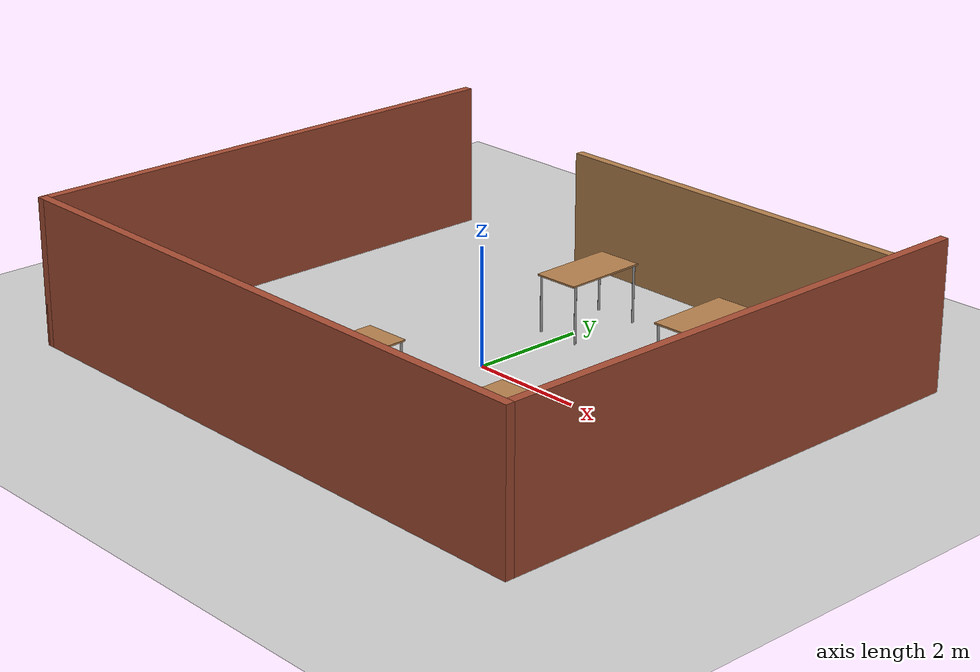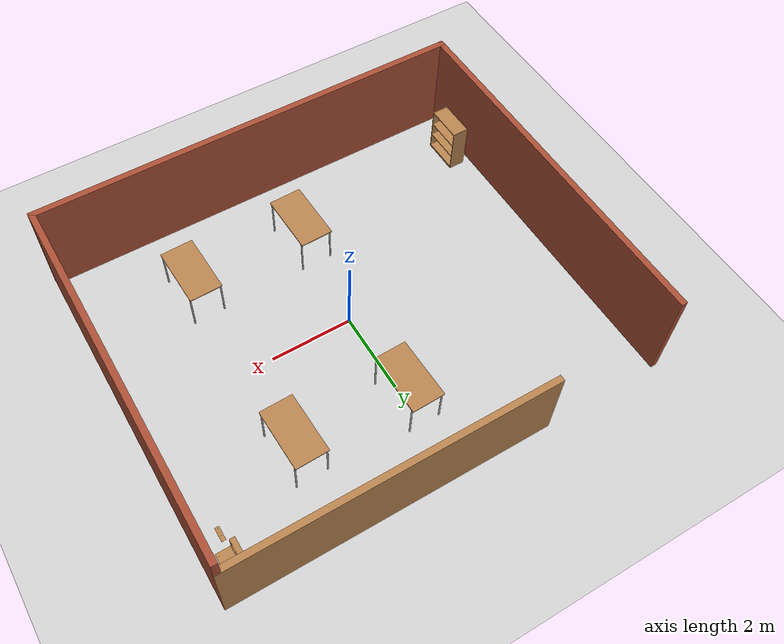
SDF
<sdf version="1.6">
 <world name="default">
  <light name="sun" type="directional">
   <pose>0 0 10 0 -0 0</pose>
   <diffuse>0.8 0.8 0.8 1</diffuse>
   <specular>0.2 0.2 0.2 1</specular>
   <attenuation>
    <range>1000</range>
    <constant>0.9</constant>
    <linear>0.01</linear>
    <quadratic>0.001</quadratic>
   </attenuation>
   <direction>-0.5 0.1 -0.9</direction>
  </light>
  <model name="ground_plane">
   <static>1</static>
   <link name="link">
    <collision name="collision">
     <geometry><plane><normal>0 0 1</normal><size>100 100</size></plane></geometry>
     <surface>
      <contact><collide_bitmask>65535</collide_bitmask></contact>
      <friction><ode><mu>100</mu><mu2>50</mu2></ode></friction>
     </surface>
    </collision>
    <visual name="visual">
     <cast_shadows>0</cast_shadows>
     <geometry><plane><normal>0 0 1</normal><size>100 100</size></plane></geometry>
     <material>
      <script><uri>file://media/materials/scripts/gazebo.material</uri><name>Gazebo/Grey</name></script>
     </material>
    </visual>
   </link>
  </model>
  <gravity>0 0 -9.8</gravity>
  <magnetic_field>6e-06 2.3e-05 -4.2e-05</magnetic_field>
  <atmosphere type="adiabatic"/>
  <physics name="default_physics" default="0" type="ode">
   <max_step_size>0.001</max_step_size>
   <real_time_factor>1</real_time_factor>
   <real_time_update_rate>1000</real_time_update_rate>
  </physics>
  <scene>
   <ambient>0.4 0.4 0.4 1</ambient>
   <sky><clouds><speed>12</speed></clouds></sky>
   <shadows>1</shadows>
  </scene>
  <audio><device>default</device></audio>
  <spherical_coordinates>
   <surface_model>EARTH_WGS84</surface_model>
   <latitude_deg>0</latitude_deg>
   <longitude_deg>0</longitude_deg>
   <elevation>0</elevation>
   <heading_deg>0</heading_deg>
  </spherical_coordinates>
  <model name="RRC_club">
   <pose>0.045782 -0.035983 0 0 -0 0</pose>
   <link name="Wall_14">
    <collision name="Wall_14_Collision">
     <geometry><box><size>10.75 0.15 2.5</size></box></geometry>
     <pose>0 0 1.25 0 -0 0</pose>
    </collision>
    <visual name="Wall_14_Visual">
     <pose>0 0 1.25 0 -0 0</pose>
     <geometry><box><size>10.75 0.15 2.5</size></box></geometry>
     <material>
      <script><uri>file://media/materials/scripts/gazebo.material</uri><name>Gazebo/Bricks</name></script>
      <ambient>1 1 1 1</ambient>
     </material>
     <meta><layer>0</layer></meta>
    </visual>
    <pose>-5e-06 -4.42518 0 0 -0 0</pose>
   </link>
   <link name="Wall_16">
    <collision name="Wall_16_Collision">
     <geometry><box><size>9 0.15 2.5</size></box></geometry>
     <pose>0 0 1.25 0 -0 0</pose>
    </collision>
    <visual name="Wall_16_Visual">
     <pose>0 0 1.25 0 -0 0</pose>
     <geometry><box><size>9 0.15 2.5</size></box></geometry>
     <material>
      <script><uri>file://media/materials/scripts/gazebo.material</uri><name>Gazebo/Bricks</name></script>
      <ambient>1 1 1 1</ambient>
     </material>
     <meta><layer>0</layer></meta>
    </visual>
    <pose>5.3 0 0 0 -0 1.57079</pose>
   </link>
   <link name="Wall_18">
    <collision name="Wall_18_Collision">
     <geometry><box><size>9 0.15 2.5</size></box></geometry>
     <pose>0 0 1.25 0 -0 0</pose>
    </collision>
    <visual name="Wall_18_Visual">
     <pose>0 0 1.25 0 -0 0</pose>
     <geometry><box><size>9 0.15 2.5</size></box></geometry>
     <material>
      <script><uri>file://media/materials/scripts/gazebo.material</uri><name>Gazebo/Bricks</name></script>
      <ambient>1 1 1 1</ambient>
     </material>
     <meta><layer>0</layer></meta>
    </visual>
    <pose>-5.3 -0.000181 0 0 -0 -1.5708</pose>
   </link>
   <link name="Wall_20">
    <collision name="Wall_20_Collision">
     <geometry><box><size>7.75 0.15 2</size></box></geometry>
     <pose>0 0 1 0 -0 0</pose>
    </collision>
    <visual name="Wall_20_Visual">
     <pose>0 0 1 0 -0 0</pose>
     <geometry><box><size>7.75 0.15 2</size></box></geometry>
     <material>
      <script><uri>file://media/materials/scripts/gazebo.material</uri><name>Gazebo/Wood</name></script>
      <ambient>1 1 1 1</ambient>
     </material>
     <meta><layer>0</layer></meta>
    </visual>
    <pose>1.50001 4.42518 0 0 -0 3.14159</pose>
   </link>
   <static>1</static>
  </model>
  <model name="table">
   <static>1</static>
   <link name="link">
    <collision name="surface">
     <pose>0 0 1 0 -0 0</pose>
     <geometry><box><size>1.5 0.8 0.03</size></box></geometry>
     <surface><friction><ode><mu>0.6</mu><mu2>0.6</mu2></ode></friction></surface>
    </collision>
    <visual name="visual1">
     <pose>0 0 1 0 -0 0</pose>
     <geometry><box><size>1.5 0.8 0.03</size></box></geometry>
     <material>
      <script><uri>file://media/materials/scripts/gazebo.material</uri><name>Gazebo/Wood</name></script>
     </material>
    </visual>
    <collision name="front_left_leg">
     <pose>0.68 0.38 0.5 0 -0 0</pose>
     <geometry><cylinder><radius>0.02</radius><length>1</length></cylinder></geometry>
    </collision>
    <visual name="front_left_leg">
     <pose>0.68 0.38 0.5 0 -0 0</pose>
     <geometry><cylinder><radius>0.02</radius><length>1</length></cylinder></geometry>
     <material>
      <script><uri>file://media/materials/scripts/gazebo.material</uri><name>Gazebo/Grey</name></script>
     </material>
    </visual>
    <collision name="front_right_leg">
     <pose>0.68 -0.38 0.5 0 -0 0</pose>
     <geometry><cylinder><radius>0.02</radius><length>1</length></cylinder></geometry>
    </collision>
    <visual name="front_right_leg">
     <pose>0.68 -0.38 0.5 0 -0 0</pose>
     <geometry><cylinder><radius>0.02</radius><length>1</length></cylinder></geometry>
     <material>
      <script><uri>file://media/materials/scripts/gazebo.material</uri><name>Gazebo/Grey</name></script>
     </material>
    </visual>
    <collision name="back_right_leg">
     <pose>-0.68 -0.38 0.5 0 -0 0</pose>
     <geometry><cylinder><radius>0.02</radius><length>1</length></cylinder></geometry>
    </collision>
    <visual name="back_right_leg">
     <pose>-0.68 -0.38 0.5 0 -0 0</pose>
     <geometry><cylinder><radius>0.02</radius><length>1</length></cylinder></geometry>
     <material>
      <script><uri>file://media/materials/scripts/gazebo.material</uri><name>Gazebo/Grey</name></script>
     </material>
    </visual>
    <collision name="back_left_leg">
     <pose>-0.68 0.38 0.5 0 -0 0</pose>
     <geometry><cylinder><radius>0.02</radius><length>1</length></cylinder></geometry>
    </collision>
    <visual name="back_left_leg">
     <pose>-0.68 0.38 0.5 0 -0 0</pose>
     <geometry><cylinder><radius>0.02</radius><length>1</length></cylinder></geometry>
     <material>
      <script><uri>file://media/materials/scripts/gazebo.material</uri><name>Gazebo/Grey</name></script>
     </material>
    </visual>
   </link>
   <pose>-0.155231 -2.51877 0 0 -0 1.59842</pose>
  </model>
  <model name="table_clone">
   <static>1</static>
   <link name="link">
    <collision name="surface">
     <pose>0 0 1 0 -0 0</pose>
     <geometry><box><size>1.5 0.8 0.03</size></box></geometry>
     <surface><friction><ode><mu>0.6</mu><mu2>0.6</mu2></ode></friction></surface>
    </collision>
    <visual name="visual1">
     <pose>0 0 1 0 -0 0</pose>
     <geometry><box><size>1.5 0.8 0.03</size></box></geometry>
     <material>
      <script><uri>file://media/materials/scripts/gazebo.material</uri><name>Gazebo/Wood</name></script>
     </material>
    </visual>
    <collision name="front_left_leg">
     <pose>0.68 0.38 0.5 0 -0 0</pose>
     <geometry><cylinder><radius>0.02</radius><length>1</length></cylinder></geometry>
    </collision>
    <visual name="front_left_leg">
     <pose>0.68 0.38 0.5 0 -0 0</pose>
     <geometry><cylinder><radius>0.02</radius><length>1</length></cylinder></geometry>
     <material>
      <script><uri>file://media/materials/scripts/gazebo.material</uri><name>Gazebo/Grey</name></script>
     </material>
    </visual>
    <collision name="front_right_leg">
     <pose>0.68 -0.38 0.5 0 -0 0</pose>
     <geometry><cylinder><radius>0.02</radius><length>1</length></cylinder></geometry>
    </collision>
    <visual name="front_right_leg">
     <pose>0.68 -0.38 0.5 0 -0 0</pose>
     <geometry><cylinder><radius>0.02</radius><length>1</length></cylinder></geometry>
     <material>
      <script><uri>file://media/materials/scripts/gazebo.material</uri><name>Gazebo/Grey</name></script>
     </material>
    </visual>
    <collision name="back_right_leg">
     <pose>-0.68 -0.38 0.5 0 -0 0</pose>
     <geometry><cylinder><radius>0.02</radius><length>1</length></cylinder></geometry>
    </collision>
    <visual name="back_right_leg">
     <pose>-0.68 -0.38 0.5 0 -0 0</pose>
     <geometry><cylinder><radius>0.02</radius><length>1</length></cylinder></geometry>
     <material>
      <script><uri>file://media/materials/scripts/gazebo.material</uri><name>Gazebo/Grey</name></script>
     </material>
    </visual>
    <collision name="back_left_leg">
     <pose>-0.68 0.38 0.5 0 -0 0</pose>
     <geometry><cylinder><radius>0.02</radius><length>1</length></cylinder></geometry>
    </collision>
    <visual name="back_left_leg">
     <pose>-0.68 0.38 0.5 0 -0 0</pose>
     <geometry><cylinder><radius>0.02</radius><length>1</length></cylinder></geometry>
     <material>
      <script><uri>file://media/materials/scripts/gazebo.material</uri><name>Gazebo/Grey</name></script>
     </material>
    </visual>
   </link>
   <pose>-0.054084 2.36724 0 0 -0 1.59842</pose>
  </model>
  <model name="table_clone_0">
   <static>1</static>
   <link name="link">
    <collision name="surface">
     <pose>0 0 1 0 -0 0</pose>
     <geometry><box><size>1.5 0.8 0.03</size></box></geometry>
     <surface><friction><ode><mu>0.6</mu><mu2>0.6</mu2></ode></friction></surface>
    </collision>
    <visual name="visual1">
     <pose>0 0 1 0 -0 0</pose>
     <geometry><box><size>1.5 0.8 0.03</size></box></geometry>
     <material>
      <script><uri>file://media/materials/scripts/gazebo.material</uri><name>Gazebo/Wood</name></script>
     </material>
    </visual>
    <collision name="front_left_leg">
     <pose>0.68 0.38 0.5 0 -0 0</pose>
     <geometry><cylinder><radius>0.02</radius><length>1</length></cylinder></geometry>
    </collision>
    <visual name="front_left_leg">
     <pose>0.68 0.38 0.5 0 -0 0</pose>
     <geometry><cylinder><radius>0.02</radius><length>1</length></cylinder></geometry>
     <material>
      <script><uri>file://media/materials/scripts/gazebo.material</uri><name>Gazebo/Grey</name></script>
     </material>
    </visual>
    <collision name="front_right_leg">
     <pose>0.68 -0.38 0.5 0 -0 0</pose>
     <geometry><cylinder><radius>0.02</radius><length>1</length></cylinder></geometry>
    </collision>
    <visual name="front_right_leg">
     <pose>0.68 -0.38 0.5 0 -0 0</pose>
     <geometry><cylinder><radius>0.02</radius><length>1</length></cylinder></geometry>
     <material>
      <script><uri>file://media/materials/scripts/gazebo.material</uri><name>Gazebo/Grey</name></script>
     </material>
    </visual>
    <collision name="back_right_leg">
     <pose>-0.68 -0.38 0.5 0 -0 0</pose>
     <geometry><cylinder><radius>0.02</radius><length>1</length></cylinder></geometry>
    </collision>
    <visual name="back_right_leg">
     <pose>-0.68 -0.38 0.5 0 -0 0</pose>
     <geometry><cylinder><radius>0.02</radius><length>1</length></cylinder></geometry>
     <material>
      <script><uri>file://media/materials/scripts/gazebo.material</uri><name>Gazebo/Grey</name></script>
     </material>
    </visual>
    <collision name="back_left_leg">
     <pose>-0.68 0.38 0.5 0 -0 0</pose>
     <geometry><cylinder><radius>0.02</radius><length>1</length></cylinder></geometry>
    </collision>
    <visual name="back_left_leg">
     <pose>-0.68 0.38 0.5 0 -0 0</pose>
     <geometry><cylinder><radius>0.02</radius><length>1</length></cylinder></geometry>
     <material>
      <script><uri>file://media/materials/scripts/gazebo.material</uri><name>Gazebo/Grey</name></script>
     </material>
    </visual>
   </link>
   <pose>2.71781 -2.44054 0 0 -0 1.59842</pose>
  </model>
  <model name="table_clone_1">
   <static>1</static>
   <link name="link">
    <collision name="surface">
     <pose>0 0 1 0 -0 0</pose>
     <geometry><box><size>1.5 0.8 0.03</size></box></geometry>
     <surface><friction><ode><mu>0.6</mu><mu2>0.6</mu2></ode></friction></surface>
    </collision>
    <visual name="visual1">
     <pose>0 0 1 0 -0 0</pose>
     <geometry><box><size>1.5 0.8 0.03</size></box></geometry>
     <material>
      <script><uri>file://media/materials/scripts/gazebo.material</uri><name>Gazebo/Wood</name></script>
     </material>
    </visual>
    <collision name="front_left_leg">
     <pose>0.68 0.38 0.5 0 -0 0</pose>
     <geometry><cylinder><radius>0.02</radius><length>1</length></cylinder></geometry>
    </collision>
    <visual name="front_left_leg">
     <pose>0.68 0.38 0.5 0 -0 0</pose>
     <geometry><cylinder><radius>0.02</radius><length>1</length></cylinder></geometry>
     <material>
      <script><uri>file://media/materials/scripts/gazebo.material</uri><name>Gazebo/Grey</name></script>
     </material>
    </visual>
    <collision name="front_right_leg">
     <pose>0.68 -0.38 0.5 0 -0 0</pose>
     <geometry><cylinder><radius>0.02</radius><length>1</length></cylinder></geometry>
    </collision>
    <visual name="front_right_leg">
     <pose>0.68 -0.38 0.5 0 -0 0</pose>
     <geometry><cylinder><radius>0.02</radius><length>1</length></cylinder></geometry>
     <material>
      <script><uri>file://media/materials/scripts/gazebo.material</uri><name>Gazebo/Grey</name></script>
     </material>
    </visual>
    <collision name="back_right_leg">
     <pose>-0.68 -0.38 0.5 0 -0 0</pose>
     <geometry><cylinder><radius>0.02</radius><length>1</length></cylinder></geometry>
    </collision>
    <visual name="back_right_leg">
     <pose>-0.68 -0.38 0.5 0 -0 0</pose>
     <geometry><cylinder><radius>0.02</radius><length>1</length></cylinder></geometry>
     <material>
      <script><uri>file://media/materials/scripts/gazebo.material</uri><name>Gazebo/Grey</name></script>
     </material>
    </visual>
    <collision name="back_left_leg">
     <pose>-0.68 0.38 0.5 0 -0 0</pose>
     <geometry><cylinder><radius>0.02</radius><length>1</length></cylinder></geometry>
    </collision>
    <visual name="back_left_leg">
     <pose>-0.68 0.38 0.5 0 -0 0</pose>
     <geometry><cylinder><radius>0.02</radius><length>1</length></cylinder></geometry>
     <material>
      <script><uri>file://media/materials/scripts/gazebo.material</uri><name>Gazebo/Grey</name></script>
     </material>
    </visual>
   </link>
   <pose>2.64587 2.25466 0 0 -0 1.59842</pose>
  </model>
  <model name="bookshelf">
   <static>1</static>
   <link name="link">
    <inertial><mass>1</mass></inertial>
    <collision name="back">
     <pose>0 0.005 0.6 0 -0 0</pose>
     <geometry><box><size>0.9 0.01 1.2</size></box></geometry>
    </collision>
    <visual name="visual1">
     <pose>0 0.005 0.6 0 -0 0</pose>
     <geometry><box><size>0.9 0.01 1.2</size></box></geometry>
     <material>
      <script><uri>file://media/materials/scripts/gazebo.material</uri><name>Gazebo/Wood</name></script>
     </material>
    </visual>
    <collision name="left_side">
     <pose>0.45 -0.195 0.6 0 -0 0</pose>
     <geometry><box><size>0.02 0.4 1.2</size></box></geometry>
    </collision>
    <visual name="visual2">
     <pose>0.45 -0.195 0.6 0 -0 0</pose>
     <geometry><box><size>0.02 0.4 1.2</size></box></geometry>
     <material>
      <script><uri>file://media/materials/scripts/gazebo.material</uri><name>Gazebo/Wood</name></script>
     </material>
    </visual>
    <collision name="right_side">
     <pose>-0.45 -0.195 0.6 0 -0 0</pose>
     <geometry><box><size>0.02 0.4 1.2</size></box></geometry>
    </collision>
    <visual name="visual3">
     <pose>-0.45 -0.195 0.6 0 -0 0</pose>
     <geometry><box><size>0.02 0.4 1.2</size></box></geometry>
     <material>
      <script><uri>file://media/materials/scripts/gazebo.material</uri><name>Gazebo/Wood</name></script>
     </material>
    </visual>
    <collision name="bottom">
     <pose>0 -0.195 0.03 0 -0 0</pose>
     <geometry><box><size>0.88 0.4 0.06</size></box></geometry>
    </collision>
    <visual name="visual4">
     <pose>0 -0.195 0.03 0 -0 0</pose>
     <geometry><box><size>0.88 0.4 0.06</size></box></geometry>
     <material>
      <script><uri>file://media/materials/scripts/gazebo.material</uri><name>Gazebo/Wood</name></script>
     </material>
    </visual>
    <collision name="top">
     <pose>0 -0.195 1.19 0 -0 0</pose>
     <geometry><box><size>0.88 0.4 0.02</size></box></geometry>
    </collision>
    <visual name="visual5">
     <pose>0 -0.195 1.19 0 -0 0</pose>
     <geometry><box><size>0.88 0.4 0.02</size></box></geometry>
     <material>
      <script><uri>file://media/materials/scripts/gazebo.material</uri><name>Gazebo/Wood</name></script>
     </material>
    </visual>
    <collision name="low_shelf">
     <pose>0 -0.195 0.43 0 -0 0</pose>
     <geometry><box><size>0.88 0.4 0.02</size></box></geometry>
    </collision>
    <visual name="visual6">
     <pose>0 -0.195 0.43 0 -0 0</pose>
     <geometry><box><size>0.88 0.4 0.02</size></box></geometry>
     <material>
      <script><uri>file://media/materials/scripts/gazebo.material</uri><name>Gazebo/Wood</name></script>
     </material>
    </visual>
    <collision name="high_shelf">
     <pose>0 -0.195 0.8 0 -0 0</pose>
     <geometry><box><size>0.88 0.4 0.02</size></box></geometry>
    </collision>
    <visual name="visual7">
     <pose>0 -0.195 0.8 0 -0 0</pose>
     <geometry><box><size>0.88 0.4 0.02</size></box></geometry>
     <material>
      <script><uri>file://media/materials/scripts/gazebo.material</uri><name>Gazebo/Wood</name></script>
     </material>
    </visual>
   </link>
   <pose>-4.98206 -3.15668 0 0 -0 1.57459</pose>
  </model>
  <model name="cricket_ball">
   <link name="link">
    <pose>0 0 0.0375 0 -0 0</pose>
    <inertial>
     <mass>0.1467</mass>
     <inertia>
      <ixx>8.25187e-05</ixx>
      <ixy>0</ixy>
      <ixz>0</ixz>
      <iyy>8.25187e-05</iyy>
      <iyz>0</iyz>
      <izz>8.25187e-05</izz>
     </inertia>
    </inertial>
    <collision name="collision">
     <geometry><sphere><radius>0.0375</radius></sphere></geometry>
     <surface>
      <contact>
       <poissons_ratio>0.347</poissons_ratio>
       <elastic_modulus>8.8e+09</elastic_modulus>
       <ode><kp>100000</kp><kd>100</kd><max_vel>100</max_vel><min_depth>0.001</min_depth></ode>
      </contact>
      <friction>
       <torsional>
        <coefficient>1</coefficient>
        <use_patch_radius>0</use_patch_radius>
        <surface_radius>0.01</surface_radius>
       </torsional>
      </friction>
     </surface>
    </collision>
    <visual name="visual">
     <geometry><sphere><radius>0.0375</radius></sphere></geometry>
     <material>
      <script><uri>file://media/materials/scripts/gazebo.material</uri><name>Gazebo/Red</name></script>
     </material>
    </visual>
    <velocity_decay><linear>0</linear><angular>0.005</angular></velocity_decay>
   </link>
   <pose>-4.89699 -3.76686 -0.001014 0 -0 0</pose>
  </model>
  <model name="wooden_case_metal_peg">
   <link name="wooden_case::base">
    <pose>0 0 0.024 0 -0 0</pose>
    <inertial>
     <pose>-0.022184 0 0.171592 0 -0 0</pose>
     <mass>3.96264</mass>
     <inertia>
      <ixx>0.213536</ixx>
      <ixy>0</ixy>
      <ixz>0.000779377</ixz>
      <iyy>0.0708943</iyy>
      <iyz>0</iyz>
      <izz>0.154604</izz>
     </inertia>
    </inertial>
    <collision name="collision_back">
     <pose>-0.053975 0 0.1778 0 -0 0</pose>
     <geometry><box><size>0.01905 0.5461 0.3175</size></box></geometry>
     <surface>
      <contact>
       <poissons_ratio>0.347</poissons_ratio>
       <elastic_modulus>8.8e+09</elastic_modulus>
       <ode><kp>100000</kp><kd>100</kd><max_vel>100</max_vel><min_depth>0.001</min_depth></ode>
      </contact>
      <friction>
       <torsional>
        <coefficient>1</coefficient>
        <use_patch_radius>0</use_patch_radius>
        <surface_radius>0.01</surface_radius>
       </torsional>
      </friction>
     </surface>
    </collision>
    <visual name="visual_back">
     <pose>-0.053975 0 0.1778 0 -0 0</pose>
     <geometry><box><size>0.01905 0.5461 0.3175</size></box></geometry>
     <material>
      <script><uri>file://media/materials/scripts/gazebo.material</uri><name>Gazebo/Wood</name></script>
     </material>
    </visual>
    <collision name="collision_bottom">
     <pose>0 0 0.009525 0 -0 0</pose>
     <geometry><box><size>0.127 0.5842 0.01905</size></box></geometry>
     <surface>
      <contact>
       <poissons_ratio>0.347</poissons_ratio>
       <elastic_modulus>8.8e+09</elastic_modulus>
       <ode><kp>100000</kp><kd>100</kd><max_vel>100</max_vel><min_depth>0.001</min_depth></ode>
      </contact>
      <friction>
       <torsional>
        <coefficient>1</coefficient>
        <use_patch_radius>0</use_patch_radius>
        <surface_radius>0.01</surface_radius>
       </torsional>
      </friction>
     </surface>
    </collision>
    <visual name="visual_bottom">
     <pose>0 0 0.009525 0 -0 0</pose>
     <geometry><box><size>0.127 0.5842 0.01905</size></box></geometry>
     <material>
      <script><uri>file://media/materials/scripts/gazebo.material</uri><name>Gazebo/Wood</name></script>
     </material>
    </visual>
    <collision name="collision_top">
     <pose>0 0 0.346075 0 -0 0</pose>
     <geometry><box><size>0.127 0.5842 0.01905</size></box></geometry>
     <surface>
      <contact>
       <poissons_ratio>0.347</poissons_ratio>
       <elastic_modulus>8.8e+09</elastic_modulus>
       <ode><kp>100000</kp><kd>100</kd><max_vel>100</max_vel><min_depth>0.001</min_depth></ode>
      </contact>
      <friction>
       <torsional>
        <coefficient>1</coefficient>
        <use_patch_radius>0</use_patch_radius>
        <surface_radius>0.01</surface_radius>
       </torsional>
      </friction>
     </surface>
    </collision>
    <visual name="visual_top">
     <pose>0 0 0.346075 0 -0 0</pose>
     <geometry><box><size>0.127 0.5842 0.01905</size></box></geometry>
     <material>
      <script><uri>file://media/materials/scripts/gazebo.material</uri><name>Gazebo/Wood</name></script>
     </material>
    </visual>
    <collision name="collision_left">
     <pose>0 -0.282575 0.1778 0 -0 0</pose>
     <geometry><box><size>0.127 0.01905 0.3175</size></box></geometry>
     <surface>
      <contact>
       <poissons_ratio>0.347</poissons_ratio>
       <elastic_modulus>8.8e+09</elastic_modulus>
       <ode><kp>100000</kp><kd>100</kd><max_vel>100</max_vel><min_depth>0.001</min_depth></ode>
      </contact>
      <friction>
       <torsional>
        <coefficient>1</coefficient>
        <use_patch_radius>0</use_patch_radius>
        <surface_radius>0.01</surface_radius>
       </torsional>
      </friction>
     </surface>
    </collision>
    <visual name="visual_left">
     <pose>0 -0.282575 0.1778 0 -0 0</pose>
     <geometry><box><size>0.127 0.01905 0.3175</size></box></geometry>
     <material>
      <script><uri>file://media/materials/scripts/gazebo.material</uri><name>Gazebo/Wood</name></script>
     </material>
    </visual>
    <collision name="collision_right">
     <pose>0 0.282575 0.1778 0 -0 0</pose>
     <geometry><box><size>0.127 0.01905 0.3175</size></box></geometry>
     <surface>
      <contact>
       <poissons_ratio>0.347</poissons_ratio>
       <elastic_modulus>8.8e+09</elastic_modulus>
       <ode><kp>100000</kp><kd>100</kd><max_vel>100</max_vel><min_depth>0.001</min_depth></ode>
      </contact>
      <friction>
       <torsional>
        <coefficient>1</coefficient>
        <use_patch_radius>0</use_patch_radius>
        <surface_radius>0.01</surface_radius>
       </torsional>
      </friction>
     </surface>
    </collision>
    <visual name="visual_right">
     <pose>0 0.282575 0.1778 0 -0 0</pose>
     <geometry><box><size>0.127 0.01905 0.3175</size></box></geometry>
     <material>
      <script><uri>file://media/materials/scripts/gazebo.material</uri><name>Gazebo/Wood</name></script>
     </material>
    </visual>
    <collision name="collision_block_left">
     <pose>0.0095 -0.2151 -0.012 0 -0 0</pose>
     <geometry><box><size>0.108 0.05 0.024</size></box></geometry>
     <surface>
      <contact>
       <poissons_ratio>0.347</poissons_ratio>
       <elastic_modulus>8.8e+09</elastic_modulus>
       <ode><kp>100000</kp><kd>100</kd><max_vel>100</max_vel><min_depth>0.001</min_depth></ode>
      </contact>
      <friction>
       <torsional>
        <coefficient>1</coefficient>
        <use_patch_radius>0</use_patch_radius>
        <surface_radius>0.01</surface_radius>
       </torsional>
      </friction>
     </surface>
    </collision>
    <visual name="visual_block_left">
     <pose>0.0095 -0.2151 -0.012 0 -0 0</pose>
     <geometry><box><size>0.108 0.05 0.024</size></box></geometry>
     <material>
      <script><uri>file://media/materials/scripts/gazebo.material</uri><name>Gazebo/Wood</name></script>
     </material>
    </visual>
    <collision name="collision_block_right">
     <pose>0.0095 0.2151 -0.012 0 -0 0</pose>
     <geometry><box><size>0.108 0.05 0.024</size></box></geometry>
     <surface>
      <contact>
       <poissons_ratio>0.347</poissons_ratio>
       <elastic_modulus>8.8e+09</elastic_modulus>
       <ode><kp>100000</kp><kd>100</kd><max_vel>100</max_vel><min_depth>0.001</min_depth></ode>
      </contact>
      <friction>
       <torsional>
        <coefficient>1</coefficient>
        <use_patch_radius>0</use_patch_radius>
        <surface_radius>0.01</surface_radius>
       </torsional>
      </friction>
     </surface>
    </collision>
    <visual name="visual_block_right">
     <pose>0.0095 0.2151 -0.012 0 -0 0</pose>
     <geometry><box><size>0.108 0.05 0.024</size></box></geometry>
     <material>
      <script><uri>file://media/materials/scripts/gazebo.material</uri><name>Gazebo/Wood</name></script>
     </material>
    </visual>
   </link>
   <link name="wooden_case::lid">
    <pose>0.243775 0 0.009525 0 -0 0</pose>
    <inertial>
     <mass>1.97874</mass>
     <inertia>
      <ixx>0.0563367</ixx>
      <ixy>0</ixy>
      <ixz>0</ixz>
      <iyy>0.020911</iyy>
      <iyz>0</iyz>
      <izz>0.0771281</izz>
     </inertia>
    </inertial>
    <collision name="collision">
     <geometry><box><size>0.3556 0.5842 0.01905</size></box></geometry>
     <surface>
      <contact>
       <poissons_ratio>0.347</poissons_ratio>
       <elastic_modulus>8.8e+09</elastic_modulus>
       <ode><kp>100000</kp><kd>100</kd><max_vel>100</max_vel><min_depth>0.001</min_depth></ode>
      </contact>
      <friction>
       <torsional>
        <coefficient>1</coefficient>
        <use_patch_radius>0</use_patch_radius>
        <surface_radius>0.01</surface_radius>
       </torsional>
      </friction>
     </surface>
    </collision>
    <visual name="visual">
     <geometry><box><size>0.3556 0.5842 0.01905</size></box></geometry>
     <material>
      <script><uri>file://media/materials/scripts/gazebo.material</uri><name>Gazebo/Wood</name></script>
     </material>
    </visual>
    <visual name="tee_nut_1">
     <pose>0.122 -0.216 0 0 -0 0</pose>
     <geometry><cylinder><radius>0.00635</radius><length>0.0192405</length></cylinder></geometry>
     <material>
      <script><uri>file://media/materials/scripts/gazebo.material</uri><name>Gazebo/Grey</name></script>
     </material>
    </visual>
    <visual name="tee_nut_2">
     <pose>0.122 -0.088 0 0 -0 0</pose>
     <geometry><cylinder><radius>0.00635</radius><length>0.0192405</length></cylinder></geometry>
     <material>
      <script><uri>file://media/materials/scripts/gazebo.material</uri><name>Gazebo/Grey</name></script>
     </material>
    </visual>
    <visual name="tee_nut_3">
     <pose>0.122 0.088 0 0 -0 0</pose>
     <geometry><cylinder><radius>0.00635</radius><length>0.0192405</length></cylinder></geometry>
     <material>
      <script><uri>file://media/materials/scripts/gazebo.material</uri><name>Gazebo/Grey</name></script>
     </material>
    </visual>
    <visual name="tee_nut_4">
     <pose>0.122 0.216 0 0 -0 0</pose>
     <geometry><cylinder><radius>0.00635</radius><length>0.0192405</length></cylinder></geometry>
     <material>
      <script><uri>file://media/materials/scripts/gazebo.material</uri><name>Gazebo/Grey</name></script>
     </material>
    </visual>
   </link>
   <joint name="wooden_case::lid_hinge" type="revolute">
    <pose>-0.1778 0 0.01905 0 -0 0</pose>
    <parent>wooden_case::base</parent>
    <child>wooden_case::lid</child>
    <axis>
     <xyz>0 1 0</xyz>
     <limit><upper>0.523599</upper><lower>-1.5708</lower></limit>
     <use_parent_model_frame>0</use_parent_model_frame>
     <dynamics><spring_reference>0</spring_reference><spring_stiffness>0</spring_stiffness></dynamics>
    </axis>
   </joint>
   <link name="peg::link">
    <pose>0.365774 0.216 0.05005 0 -0 0</pose>
    <inertial>
     <mass>0.0121</mass>
     <inertia>
      <ixx>3.90898e-06</ixx>
      <ixy>0</ixy>
      <ixz>0</ixz>
      <iyy>3.90898e-06</iyy>
      <iyz>0</iyz>
      <izz>6.58845e-08</izz>
     </inertia>
    </inertial>
    <collision name="collision">
     <geometry><cylinder><radius>0.0033</radius><length>0.062</length></cylinder></geometry>
     <surface>
      <contact>
       <poissons_ratio>0.305</poissons_ratio>
       <elastic_modulus>2e+11</elastic_modulus>
       <ode><kp>100000</kp><kd>100</kd><max_vel>100</max_vel><min_depth>0.001</min_depth></ode>
      </contact>
      <friction>
       <torsional>
        <coefficient>1</coefficient>
        <use_patch_radius>0</use_patch_radius>
        <surface_radius>0.01</surface_radius>
       </torsional>
      </friction>
     </surface>
    </collision>
    <visual name="visual">
     <geometry><cylinder><radius>0.0033</radius><length>0.062</length></cylinder></geometry>
     <material>
      <script><uri>file://media/materials/scripts/gazebo.material</uri><name>Gazebo/Grey</name></script>
     </material>
    </visual>
   </link>
   <joint name="case_peg" type="revolute">
    <child>peg::link</child>
    <parent>wooden_case::lid</parent>
    <axis>
     <xyz>0 0 1</xyz>
     <limit><upper>0</upper><lower>0</lower></limit>
     <use_parent_model_frame>0</use_parent_model_frame>
     <dynamics><spring_reference>0</spring_reference><spring_stiffness>0</spring_stiffness></dynamics>
    </axis>
   </joint>
   <pose>4.68613 3.67025 -0.001057 0 -0.000421 0</pose>
  </model>
  <model name="wooden_board">
   <link name="base">
    <pose>0 0 0.00523 0 -0 0</pose>
    <inertial>
     <mass>0.2765</mass>
     <inertia>
      <ixx>0.0025148</ixx>
      <ixy>0</ixy>
      <ixz>0</ixz>
      <iyy>0.00024037</iyy>
      <iyz>0</iyz>
      <izz>0.00275013</izz>
     </inertia>
    </inertial>
    <collision name="collision">
     <geometry><box><size>0.1016 0.3302 0.01046</size></box></geometry>
     <surface>
      <contact>
       <poissons_ratio>0.347</poissons_ratio>
       <elastic_modulus>8.8e+09</elastic_modulus>
       <ode><kp>100000</kp><kd>100</kd><max_vel>100</max_vel><min_depth>0.001</min_depth></ode>
      </contact>
      <friction>
       <torsional>
        <coefficient>1</coefficient>
        <use_patch_radius>0</use_patch_radius>
        <surface_radius>0.01</surface_radius>
       </torsional>
      </friction>
     </surface>
    </collision>
    <visual name="visual">
     <geometry><box><size>0.1016 0.3302 0.01046</size></box></geometry>
     <material>
      <script><uri>file://media/materials/scripts/gazebo.material</uri><name>Gazebo/Wood</name></script>
     </material>
    </visual>
    <visual name="tee_nut_1">
     <pose>0 -0.116 0 0 -0 0</pose>
     <geometry><cylinder><radius>0.00635</radius><length>0.0105646</length></cylinder></geometry>
     <material>
      <script><uri>file://media/materials/scripts/gazebo.material</uri><name>Gazebo/Grey</name></script>
     </material>
    </visual>
    <visual name="tee_nut_2">
     <pose>0 -0.038 0 0 -0 0</pose>
     <geometry><cylinder><radius>0.00635</radius><length>0.0105646</length></cylinder></geometry>
     <material>
      <script><uri>file://media/materials/scripts/gazebo.material</uri><name>Gazebo/Grey</name></script>
     </material>
    </visual>
    <visual name="tee_nut_3">
     <pose>0 0.038 0 0 -0 0</pose>
     <geometry><cylinder><radius>0.00635</radius><length>0.0105646</length></cylinder></geometry>
     <material>
      <script><uri>file://media/materials/scripts/gazebo.material</uri><name>Gazebo/Grey</name></script>
     </material>
    </visual>
    <visual name="tee_nut_4">
     <pose>0 0.116 0 0 -0 0</pose>
     <geometry><cylinder><radius>0.00635</radius><length>0.0105646</length></cylinder></geometry>
     <material>
      <script><uri>file://media/materials/scripts/gazebo.material</uri><name>Gazebo/Grey</name></script>
     </material>
    </visual>
   </link>
   <pose>4.82318 3.04934 -0.001007 0 -0 0</pose>
  </model>
 </world>
</sdf>
